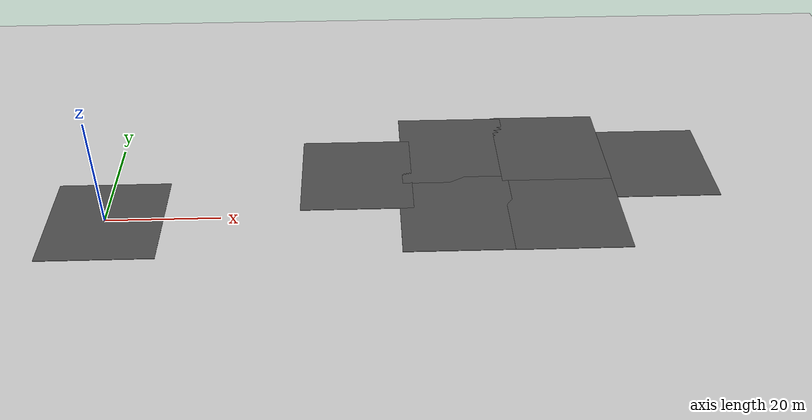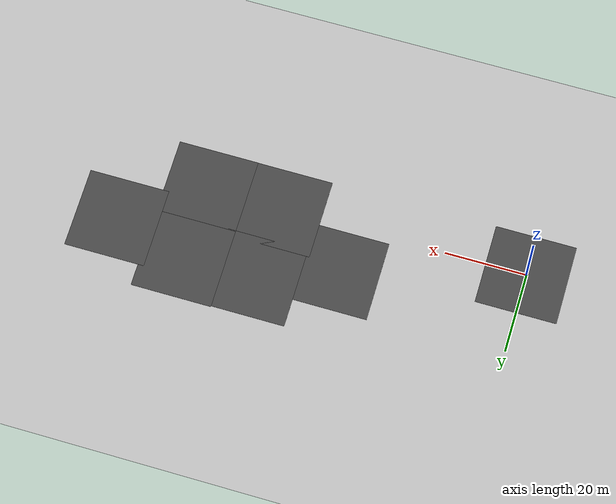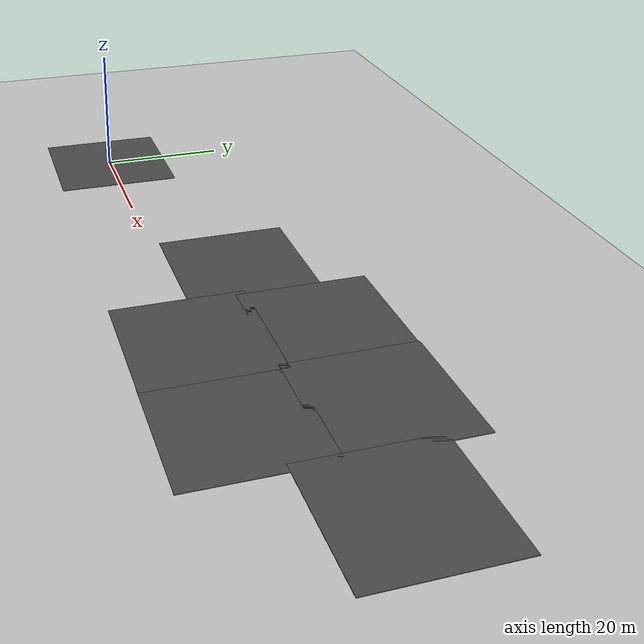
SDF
<sdf version="1.7">
 <world name="default">
  <model name="ground_plane">
   <static>1</static>
   <link name="link">
    <collision name="collision">
     <geometry><plane><normal>0 0 1</normal><size>100 100</size></plane></geometry>
     <surface><friction><ode><mu>100</mu><mu2>50</mu2></ode></friction></surface>
    </collision>
    <visual name="visual">
     <cast_shadows>0</cast_shadows>
     <geometry><plane><normal>0 0 1</normal><size>100 100</size></plane></geometry>
     <material>
      <script><uri>file://media/materials/scripts/gazebo.material</uri><name>Gazebo/Grey</name></script>
     </material>
    </visual>
    <velocity_decay><linear>0</linear><angular>0</angular></velocity_decay>
   </link>
  </model>
  <model name="asphalt_plane">
   <static>1</static>
   <link name="link">
    <collision name="collision"><geometry><box><size>20 20 0.1</size></box></geometry></collision>
    <visual name="visual">
     <cast_shadows>0</cast_shadows>
     <geometry><box><size>20 20 0.1</size></box></geometry>
     <material>
      <script>
       <uri>model://asphalt_plane/materials/scripts</uri>
       <uri>model://asphalt_plane/materials/textures</uri>
       <name>vrc/asphalt</name>
      </script>
     </material>
    </visual>
    <velocity_decay><linear>0</linear><angular>0</angular></velocity_decay>
   </link>
   <pose>0.076733 -0.110379 0 0 -0 0</pose>
  </model>
  <model name="asphalt_plane_clone_clone_2">
   <static>1</static>
   <link name="link">
    <collision name="collision"><geometry><box><size>20 20 0.1</size></box></geometry></collision>
    <visual name="visual">
     <cast_shadows>0</cast_shadows>
     <geometry><box><size>20 20 0.1</size></box></geometry>
     <material>
      <script>
       <uri>model://asphalt_plane/materials/scripts</uri>
       <uri>model://asphalt_plane/materials/textures</uri>
       <name>vrc/asphalt</name>
      </script>
     </material>
    </visual>
    <velocity_decay><linear>0</linear><angular>0</angular></velocity_decay>
   </link>
   <pose>43.5997 11.5875 0 0 -0 0</pose>
  </model>
  <model name="asphalt_plane_clone_clone_3">
   <static>1</static>
   <link name="link">
    <collision name="collision"><geometry><box><size>20 20 0.1</size></box></geometry></collision>
    <visual name="visual">
     <cast_shadows>0</cast_shadows>
     <geometry><box><size>20 20 0.1</size></box></geometry>
     <material>
      <script>
       <uri>model://asphalt_plane/materials/scripts</uri>
       <uri>model://asphalt_plane/materials/textures</uri>
       <name>vrc/asphalt</name>
      </script>
     </material>
    </visual>
    <velocity_decay><linear>0</linear><angular>0</angular></velocity_decay>
   </link>
   <pose>61.1135 0.190812 0 0 -0 0</pose>
  </model>
  <model name="asphalt_plane_clone_clone_4">
   <static>1</static>
   <link name="link">
    <collision name="collision"><geometry><box><size>20 20 0.1</size></box></geometry></collision>
    <visual name="visual">
     <cast_shadows>0</cast_shadows>
     <geometry><box><size>20 20 0.1</size></box></geometry>
     <material>
      <script>
       <uri>model://asphalt_plane/materials/scripts</uri>
       <uri>model://asphalt_plane/materials/textures</uri>
       <name>vrc/asphalt</name>
      </script>
     </material>
    </visual>
    <velocity_decay><linear>0</linear><angular>0</angular></velocity_decay>
   </link>
   <pose>80.0092 0.14306 0 0 -0 0</pose>
  </model>
  <model name="asphalt_plane_clone_clone_8">
   <static>1</static>
   <link name="link">
    <collision name="collision"><geometry><box><size>20 20 0.1</size></box></geometry></collision>
    <visual name="visual">
     <cast_shadows>0</cast_shadows>
     <geometry><box><size>20 20 0.1</size></box></geometry>
     <material>
      <script>
       <uri>model://asphalt_plane/materials/scripts</uri>
       <uri>model://asphalt_plane/materials/textures</uri>
       <name>vrc/asphalt</name>
      </script>
     </material>
    </visual>
    <velocity_decay><linear>0</linear><angular>0</angular></velocity_decay>
   </link>
   <pose>98.5968 13.4686 0 0 -0 0</pose>
  </model>
  <model name="asphalt_plane_clone_clone_9">
   <static>1</static>
   <link name="link">
    <collision name="collision"><geometry><box><size>20 20 0.1</size></box></geometry></collision>
    <visual name="visual">
     <cast_shadows>0</cast_shadows>
     <geometry><box><size>20 20 0.1</size></box></geometry>
     <material>
      <script>
       <uri>model://asphalt_plane/materials/scripts</uri>
       <uri>model://asphalt_plane/materials/textures</uri>
       <name>vrc/asphalt</name>
      </script>
     </material>
    </visual>
    <velocity_decay><linear>0</linear><angular>0</angular></velocity_decay>
   </link>
   <pose>80.0395 18.8428 0 0 -0 0</pose>
  </model>
  <model name="asphalt_plane_clone_clone_10">
   <static>1</static>
   <link name="link">
    <collision name="collision"><geometry><box><size>20 20 0.1</size></box></geometry></collision>
    <visual name="visual">
     <cast_shadows>0</cast_shadows>
     <geometry><box><size>20 20 0.1</size></box></geometry>
     <material>
      <script>
       <uri>model://asphalt_plane/materials/scripts</uri>
       <uri>model://asphalt_plane/materials/textures</uri>
       <name>vrc/asphalt</name>
      </script>
     </material>
    </visual>
    <velocity_decay><linear>0</linear><angular>0</angular></velocity_decay>
   </link>
   <pose>61.9047 18.628 0 0 -0 0</pose>
  </model>
 </world>
</sdf>
